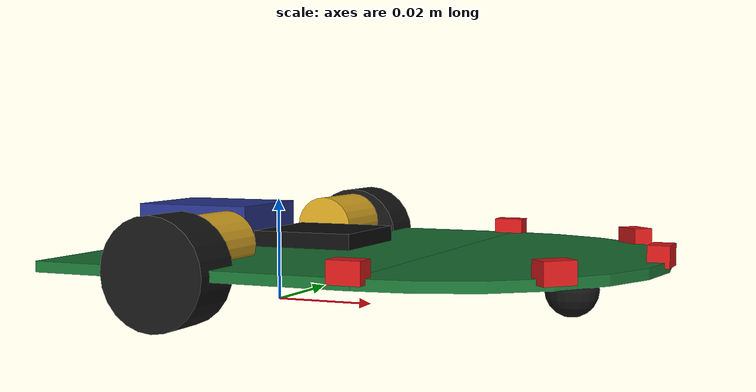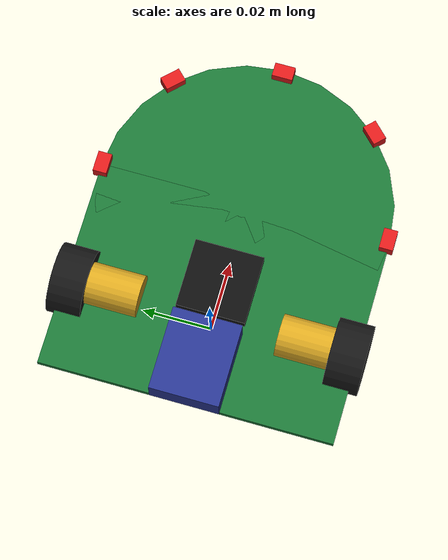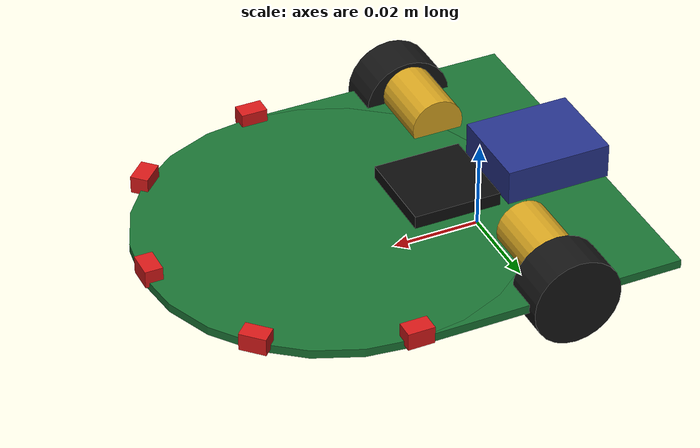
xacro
<?xml version="1.0"?>
<robot name="micromouse" xmlns:xacro="http://www.ros.org/wiki/xacro">

  <!-- ====== VARIJABLE (SI: metri, kg; x = naprijed) ====== -->
  <!-- gabarit: sirina 85mm, duljina ~103mm, ploca 2mm -->
  <xacro:property name="board_thick"  value="0.002"/>
  <xacro:property name="board_mass"   value="0.300"/>

  <xacro:property name="rear_len"     value="0.061"/>   <!-- straznji pravokutnik: duljina x -->
  <xacro:property name="rear_wid"     value="0.085"/>   <!-- sirina y -->
  <xacro:property name="rear_cx"      value="0.005"/>   <!-- centar straznjeg dijela (x) -->

  <xacro:property name="nose_radius"  value="0.0425"/>  <!-- prednji krug Ă85 -->
  <xacro:property name="nose_cx"      value="0.035"/>   <!-- centar kruga naprijed (x) -->

  <xacro:property name="wheel_radius" value="0.010"/>   <!-- Ă20mm -->
  <xacro:property name="wheel_width"  value="0.010"/>
  <xacro:property name="wheel_mass"   value="0.010"/>
  <xacro:property name="wheel_sep"    value="0.080"/>   <!-- track 80mm -->

  <xacro:property name="caster_radius" value="0.005"/>
  <xacro:property name="caster_cx"     value="0.060"/>  <!-- prednji oslonac 60mm naprijed -->

  <!-- IR senzori (ray) -->
  <xacro:property name="ir_range_min"  value="0.001"/>
  <xacro:property name="ir_range_max"  value="0.20"/>
  <xacro:property name="ir_update"     value="30"/>

  <!-- ====== MATERIJALI (RViz) ====== -->
  <material name="pcb_green"><color rgba="0.10 0.45 0.20 1.0"/></material>
  <material name="rubber"><color   rgba="0.08 0.08 0.08 1.0"/></material>
  <material name="gold"><color     rgba="0.85 0.65 0.13 1.0"/></material>
  <material name="chip"><color     rgba="0.05 0.05 0.05 1.0"/></material>
  <material name="batt"><color     rgba="0.15 0.20 0.55 1.0"/></material>
  <material name="ir_red"><color   rgba="0.85 0.10 0.10 1.0"/></material>

  <!-- ====== MAKROI: INERCIJA ====== -->
  <xacro:macro name="wheel_inertia" params="m r w">
    <inertial>
      <mass value="${m}"/>
      <inertia ixx="${(1.0/12.0)*m*(3*r*r+w*w)}" ixy="0.0" ixz="0.0"
               iyy="${0.5*m*r*r}"                iyz="0.0"
               izz="${(1.0/12.0)*m*(3*r*r+w*w)}"/>
    </inertial>
  </xacro:macro>
  <xacro:macro name="sphere_inertia" params="m r">
    <inertial>
      <mass value="${m}"/>
      <inertia ixx="${0.4*m*r*r}" ixy="0.0" ixz="0.0"
               iyy="${0.4*m*r*r}" iyz="0.0" izz="${0.4*m*r*r}"/>
    </inertial>
  </xacro:macro>

  <!-- ====== BAZA ====== -->
  <link name="base_footprint"/>

  <link name="base_link">
    <!-- obris: straznji pravokutnik + prednji krug (union) -->
    <visual>
      <origin xyz="${rear_cx} 0 0" rpy="0 0 0"/>
      <geometry><box size="${rear_len} ${rear_wid} ${board_thick}"/></geometry>
      <material name="pcb_green"/>
    </visual>
    <visual>
      <origin xyz="${nose_cx} 0 0" rpy="0 0 0"/>
      <geometry><cylinder radius="${nose_radius}" length="${board_thick}"/></geometry>
      <material name="pcb_green"/>
    </visual>

    <!-- collision: isti zaobljeni obris -->
    <collision>
      <origin xyz="${rear_cx} 0 0" rpy="0 0 0"/>
      <geometry><box size="${rear_len} ${rear_wid} ${board_thick}"/></geometry>
    </collision>
    <collision>
      <origin xyz="${nose_cx} 0 0" rpy="0 0 0"/>
      <geometry><cylinder radius="${nose_radius}" length="${board_thick}"/></geometry>
    </collision>

    <!-- masa 0.3kg, teziste blago naprijed (x=+0.015) za stabilan tronozac -->
    <inertial>
      <origin xyz="0.015 0 0" rpy="0 0 0"/>
      <mass value="${board_mass}"/>
      <inertia ixx="0.0001807" ixy="0.0" ixz="0.0"
               iyy="0.0002653" iyz="0.0" izz="0.0004459"/>
    </inertial>

    <!-- kozmetika (samo visual) -->
    <visual>  <!-- lijevi motor -->
      <origin xyz="0 0.028 0.003" rpy="1.5708 0 0"/>
      <geometry><cylinder radius="0.006" length="0.016"/></geometry>
      <material name="gold"/>
    </visual>
    <visual>  <!-- desni motor -->
      <origin xyz="0 -0.028 0.003" rpy="1.5708 0 0"/>
      <geometry><cylinder radius="0.006" length="0.016"/></geometry>
      <material name="gold"/>
    </visual>
    <visual>  <!-- mikrokontroler -->
      <origin xyz="0.010 0 0.003" rpy="0 0 0"/>
      <geometry><box size="0.020 0.020 0.003"/></geometry>
      <material name="chip"/>
    </visual>
    <visual>  <!-- baterija straga -->
      <origin xyz="-0.014 0 0.005" rpy="0 0 0"/>
      <geometry><box size="0.024 0.020 0.008"/></geometry>
      <material name="batt"/>
    </visual>
  </link>

  <joint name="base_joint" type="fixed">
    <parent link="base_footprint"/>
    <child  link="base_link"/>
    <origin xyz="0 0 ${wheel_radius}" rpy="0 0 0"/>
  </joint>

  <!-- ====== KOTACI ====== -->
  <xacro:macro name="wheel" params="prefix y_reflect">
    <link name="${prefix}_wheel">
      <visual>
        <origin xyz="0 0 0" rpy="1.5708 0 0"/>
        <geometry><cylinder radius="${wheel_radius}" length="${wheel_width}"/></geometry>
        <material name="rubber"/>
      </visual>
      <collision>
        <origin xyz="0 0 0" rpy="1.5708 0 0"/>
        <geometry><cylinder radius="${wheel_radius}" length="${wheel_width}"/></geometry>
      </collision>
      <xacro:wheel_inertia m="${wheel_mass}" r="${wheel_radius}" w="${wheel_width}"/>
    </link>
    <joint name="${prefix}_wheel_joint" type="continuous">
      <parent link="base_link"/>
      <child  link="${prefix}_wheel"/>
      <origin xyz="0 ${y_reflect*wheel_sep/2} 0" rpy="0 0 0"/>
      <axis xyz="0 1 0"/>
    </joint>
  </xacro:macro>
  <xacro:wheel prefix="left"  y_reflect="1"/>
  <xacro:wheel prefix="right" y_reflect="-1"/>

  <!-- ====== PREDNJI OSLONAC (bez trenja) ====== -->
  <link name="front_caster">
    <visual>
      <geometry><sphere radius="${caster_radius}"/></geometry>
      <material name="rubber"/>
    </visual>
    <collision>
      <geometry><sphere radius="${caster_radius}"/></geometry>
      <surface><friction><ode><mu>0.0</mu><mu2>0.0</mu2></ode></friction></surface>
    </collision>
    <xacro:sphere_inertia m="0.005" r="${caster_radius}"/>
  </link>
  <joint name="front_caster_joint" type="fixed">
    <parent link="base_link"/>
    <child  link="front_caster"/>
    <origin xyz="${caster_cx} 0 ${-(wheel_radius-caster_radius)}" rpy="0 0 0"/>
  </joint>

  <!-- ====== IR SENZORI (okviri; ray senzor tagovi dolaze u 1b, izlaz u metrima) ====== -->
  <xacro:macro name="ir_mount" params="name x y yaw">
    <link name="${name}_link">
      <visual>
        <geometry><box size="0.004 0.006 0.004"/></geometry>
        <material name="ir_red"/>
      </visual>
      <inertial>
        <mass value="0.001"/>
        <inertia ixx="1e-7" ixy="0" ixz="0" iyy="1e-7" iyz="0" izz="1e-7"/>
      </inertial>
    </link>
    <joint name="${name}_joint" type="fixed">
      <parent link="base_link"/>
      <child  link="${name}_link"/>
      <origin xyz="${x} ${y} 0.002" rpy="0 0 ${yaw}"/>
    </joint>

    <!-- IR kao jednozrakalni gpu_lidar; zraka gleda uzduz x-osi okvira -->
    <gazebo reference="${name}_link">
      <sensor name="${name}" type="gpu_lidar">
        <update_rate>${ir_update}</update_rate>
        <topic>${name}</topic>
        <gz_frame_id>${name}_link</gz_frame_id>
        <always_on>1</always_on>
        <visualize>true</visualize>
        <lidar>
          <scan>
            <horizontal><samples>1</samples><resolution>1</resolution>
              <min_angle>0</min_angle><max_angle>0</max_angle></horizontal>
            <vertical><samples>1</samples><resolution>1</resolution>
              <min_angle>0</min_angle><max_angle>0</max_angle></vertical>
          </scan>
          <range>
            <min>${ir_range_min}</min>
            <max>${ir_range_max}</max>
            <resolution>0.001</resolution>
          </range>
        </lidar>
      </sensor>
    </gazebo>
  </xacro:macro>

  <xacro:ir_mount name="ir_left"       x="0.035"  y="0.042"  yaw="1.5708"/>
  <xacro:ir_mount name="ir_left_diag"  x="0.065"  y="0.030"  yaw="0.7854"/>
  <xacro:ir_mount name="ir_front"      x="0.076"  y="0.0"    yaw="0.0"/>
  <xacro:ir_mount name="ir_right_diag" x="0.065"  y="-0.030" yaw="-0.7854"/>
  <xacro:ir_mount name="ir_right"      x="0.035"  y="-0.042" yaw="-1.5708"/>

  <!-- ====== GAZEBO: boje + trenje ====== -->
  <gazebo reference="base_link"><material>Gazebo/Green</material></gazebo>
  <gazebo reference="left_wheel"><material>Gazebo/Black</material><mu1>1.0</mu1><mu2>1.0</mu2></gazebo>
  <gazebo reference="right_wheel"><material>Gazebo/Black</material><mu1>1.0</mu1><mu2>1.0</mu2></gazebo>
  <gazebo reference="front_caster"><mu1>0.0</mu1><mu2>0.0</mu2></gazebo>

  <!-- ====== GAZEBO HARMONIC: DiffDrive + JointState ====== -->
  <gazebo>
    <plugin filename="gz-sim-diff-drive-system" name="gz::sim::systems::DiffDrive">
      <left_joint>left_wheel_joint</left_joint>
      <right_joint>right_wheel_joint</right_joint>
      <wheel_separation>${wheel_sep}</wheel_separation>
      <wheel_radius>${wheel_radius}</wheel_radius>
      <odom_publish_frequency>50</odom_publish_frequency>
      <topic>/cmd_vel</topic>
      <odom_topic>/odom</odom_topic>
      <tf_topic>/tf</tf_topic>
      <frame_id>odom</frame_id>
      <child_frame_id>base_footprint</child_frame_id>
    </plugin>
    <plugin filename="gz-sim-joint-state-publisher-system"
            name="gz::sim::systems::JointStatePublisher">
      <topic>/joint_states</topic>
    </plugin>
  </gazebo>

</robot>
